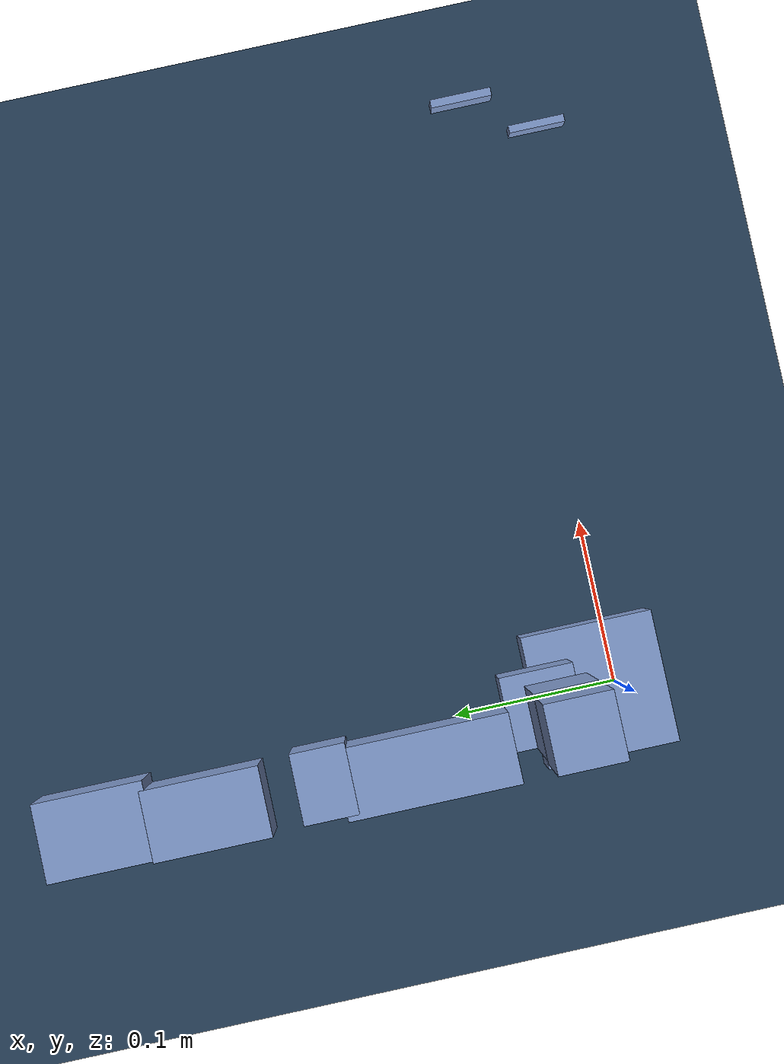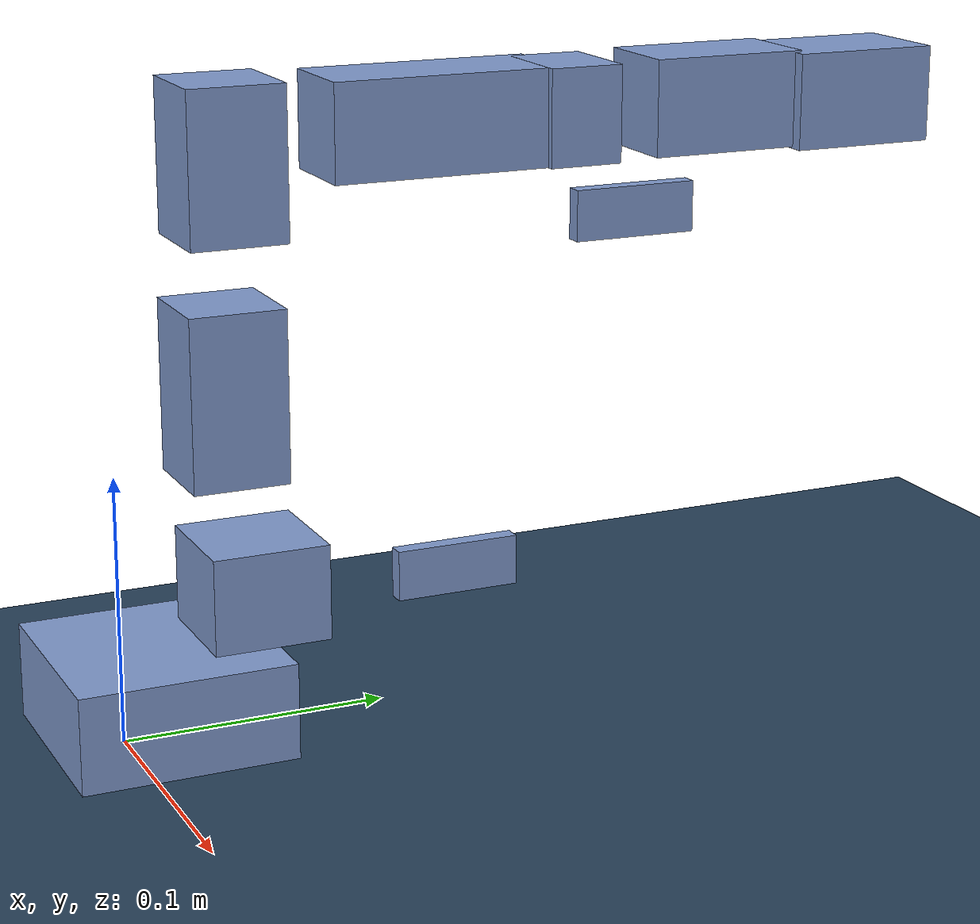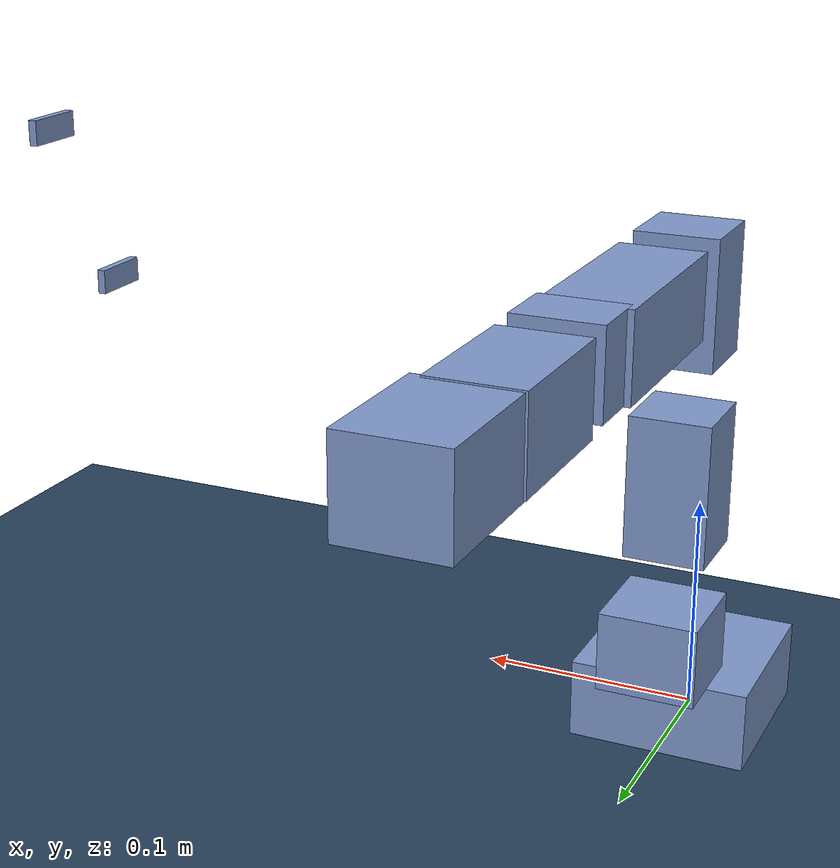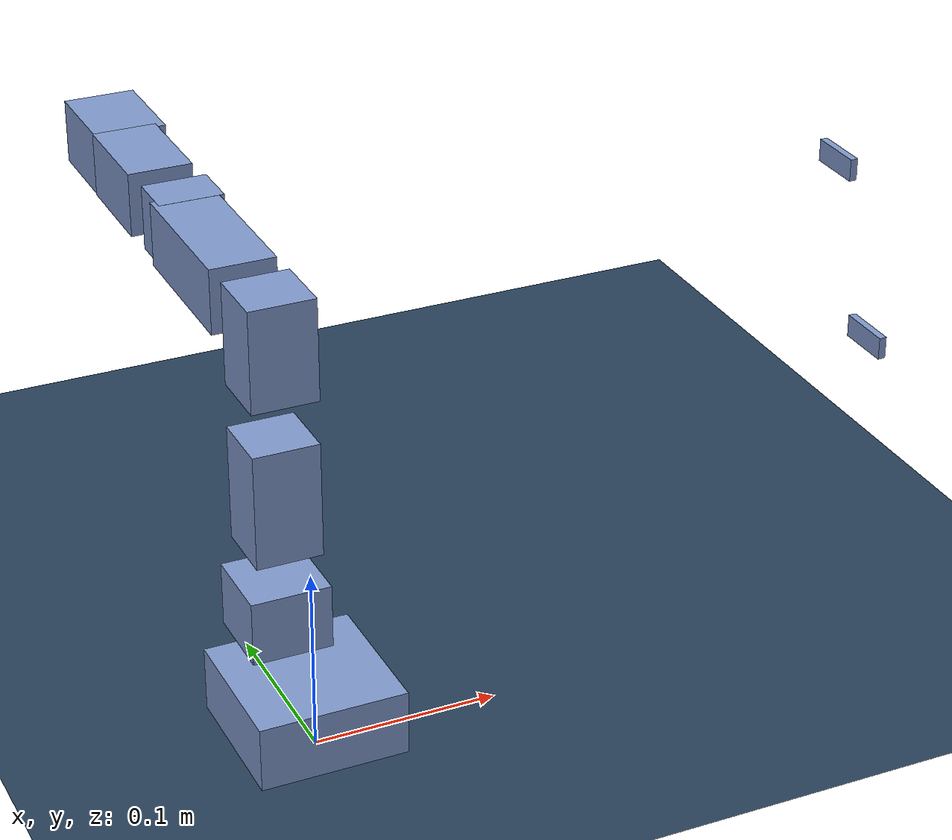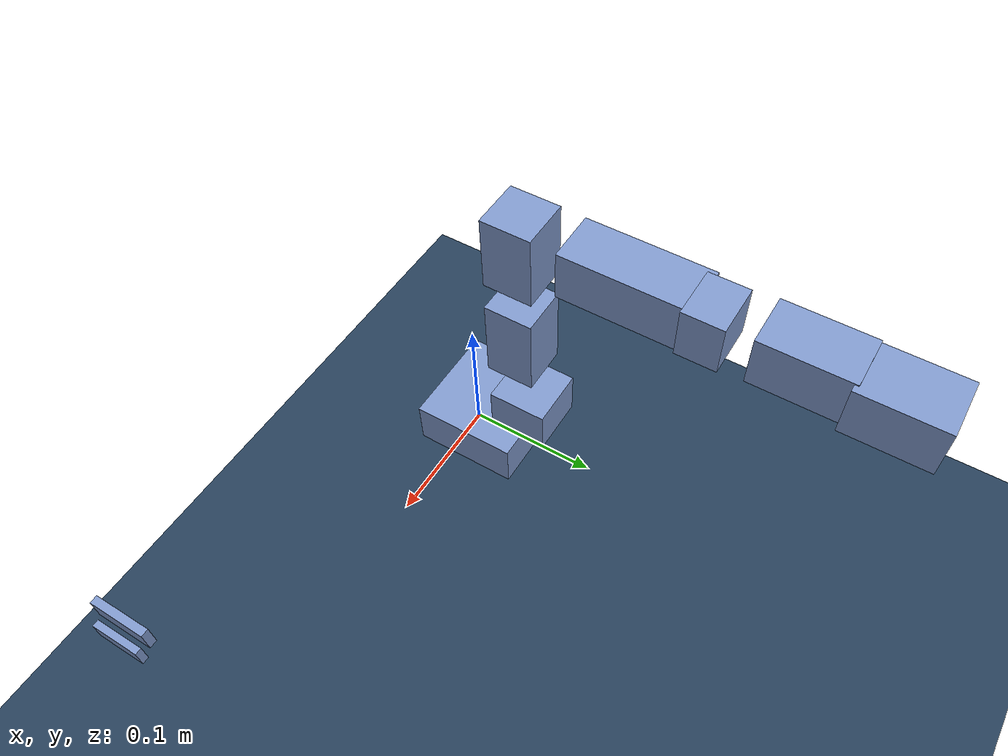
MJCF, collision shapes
<mujoco model="elrobot_follower scene">

  <include file="elrobot_follower.xml"/>

  <statistic center="0 0 0.1" extent="0.5"/>

  <visual>
    <headlight diffuse="0.6 0.6 0.6" ambient="0.3 0.3 0.3" specular="0 0 0"/>
    <rgba haze="0.15 0.25 0.35 1"/>
    <global azimuth="120" elevation="-20"/>
  </visual>

  <asset>
    <texture type="skybox" builtin="gradient" rgb1="0.3 0.5 0.7" rgb2="0 0 0" width="512" height="3072"/>
    <texture type="2d" name="groundplane" builtin="checker" mark="edge" rgb1="0.2 0.3 0.4" rgb2="0.1 0.2 0.3"
      markrgb="0.8 0.8 0.8" width="300" height="300"/>
    <material name="groundplane" texture="groundplane" texuniform="true" texrepeat="5 5" reflectance="0.2"/>
  </asset>

  <worldbody>
    <light name="floor_light" pos="0 0 1.5" dir="0 0 -1" directional="true"/>
    <geom name="floor" size="0 0 0.05" type="plane" material="groundplane"/>
  </worldbody>
</mujoco>

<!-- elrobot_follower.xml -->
<mujoco model="elrobot_follower">

  <compiler angle="radian" meshdir="../../assets" autolimits="true"/>

  <option cone="elliptic" impratio="10"/>

  <default>
    <default class="elrobot">
      <joint frictionloss="0.1" armature="0.1"/>
      <position kp="50" dampratio="1" forcerange="-2.94 2.94"/>
      <default class="visual">
        <geom type="mesh" contype="0" conaffinity="0" density="0" group="2" rgba="0.7 0.7 0.7 1"/>
        <default class="motor_visual">
          <geom rgba="0.1 0.1 0.1 1"/>
        </default>
      </default>
      <default class="collision">
        <geom group="3" rgba="0.5 0.6 0.8 0.3"/>
      </default>
    </default>
  </default>

  <asset>
    <mesh name="base_link" file="base_link.stl" scale="0.001 0.001 0.001"/>
    <mesh name="ST3215_1_v1_1" file="ST3215_1_v1_1.stl" scale="0.001 0.001 0.001"/>
    <mesh name="Joint_01_1" file="Joint_01_1.stl" scale="0.001 0.001 0.001"/>
    <mesh name="ST3215_2_v1_1" file="ST3215_2_v1_1.stl" scale="0.001 0.001 0.001"/>
    <mesh name="Joint_02_1" file="Joint_02_1.stl" scale="0.001 0.001 0.001"/>
    <mesh name="ST3215_3_v1_1" file="ST3215_3_v1_1.stl" scale="0.001 0.001 0.001"/>
    <mesh name="Joint_03_v1_1" file="Joint_03_v1_1.stl" scale="0.001 0.001 0.001"/>
    <mesh name="ST3215_4_v1_1" file="ST3215_4_v1_1.stl" scale="0.001 0.001 0.001"/>
    <mesh name="Joint_04_v1_1" file="Joint_04_v1_1.stl" scale="0.001 0.001 0.001"/>
    <mesh name="ST3215_5_v1_1" file="ST3215_5_v1_1.stl" scale="0.001 0.001 0.001"/>
    <mesh name="Joint_05_v1_1" file="Joint_05_v1_1.stl" scale="0.001 0.001 0.001"/>
    <mesh name="ST3215_6_v1_1" file="ST3215_6_v1_1.stl" scale="0.001 0.001 0.001"/>
    <mesh name="Joint_06_v1_1" file="Joint_06_v1_1.stl" scale="0.001 0.001 0.001"/>
    <mesh name="ST3215_7_v1_1" file="ST3215_7_v1_1.stl" scale="0.001 0.001 0.001"/>
    <mesh name="Gripper_Base_v1_1" file="Gripper_Base_v1_1.stl" scale="0.001 0.001 0.001"/>
    <mesh name="ST3215_8_v1_1" file="ST3215_8_v1_1.stl" scale="0.001 0.001 0.001"/>
    <mesh name="Gripper_Gear_v1_1" file="Gripper_Gear_v1_1.stl" scale="0.001 0.001 0.001"/>
    <mesh name="Gripper_Jaw_02_v1_1" file="Gripper_Jaw_02_v1_1.stl" scale="0.001 0.001 0.001"/>
    <mesh name="Gripper_Jaw_01_v1_1" file="Gripper_Jaw_01_v1_1.stl" scale="0.001 0.001 0.001"/>
  </asset>

  <worldbody>
    <body name="base_link" childclass="elrobot">
      <!-- base_link mass (0.03944) + ST3215_1 motor (0.055) merged via Rigid 1 -->
      <inertial pos="0 0.013084 0.019551" mass="0.09444"
                diaginertia="4.4e-05 6.3e-05 5.8e-05"/>
      <geom mesh="base_link" class="visual"/>
      <geom mesh="ST3215_1_v1_1" class="motor_visual" pos="0 0.007585 0.0315"/>
      <geom name="base_col" type="box" size="0.04 0.04 0.018" pos="0 0.013 0.018" class="collision"/>

      <body name="Joint_01_1" pos="0 0.042489 0.049005">
        <!-- Joint_01_1 (0.05706) + ST3215_2 (0.055) merged via Rigid 3 -->
        <inertial pos="0 0.010535 -0.002903" mass="0.11206"
                  diaginertia="2.7e-05 2.8e-05 1.4e-05"/>
        <joint name="rev_motor_01" pos="0 0 0" axis="0 -0.008727 0.999962"
               range="-1.5509 1.5509"/>
        <geom mesh="Joint_01_1" class="visual" pos="0 -0.042489 -0.049005"/>
        <geom mesh="ST3215_2_v1_1" class="motor_visual" pos="0 -0.042489 -0.049005"/>
        <geom name="j01_col" type="box" size="0.022 0.022 0.018" pos="0 0.008 0.005" class="collision"/>

        <body name="Joint_02_1" pos="-0.019668 -0.000366 0.041933">
          <!-- Joint_02_1 (0.05084) + ST3215_3 (0.055) merged via Rigid 7 -->
          <inertial pos="0.020187 -0.000361 0.040489" mass="0.10584"
                    diaginertia="3.1e-05 4.2e-05 2.1e-05"/>
          <joint name="rev_motor_02" pos="0 0 0" axis="-0.999962 -7.6e-05 0.008726"
                 range="-1.6122 1.6122"/>
          <geom mesh="Joint_02_1" class="visual" pos="0.019668 -0.042123 -0.090938"/>
          <geom mesh="ST3215_3_v1_1" class="motor_visual" pos="0.019668 -0.042123 -0.090938"/>
          <geom name="j02_col" type="box" size="0.018 0.018 0.032" pos="0.018 0 0.036" class="collision"/>

          <body name="Joint_03_v1_1" pos="-0.000122 -0.000796 0.091235">
            <!-- Joint_03 (0.03822) + ST3215_4 (0.055) merged via Rigid 9 -->
            <inertial pos="0.021383 0.002597 0.028573" mass="0.09322"
                      diaginertia="1.8e-05 2.2e-05 2.3e-05"/>
            <joint name="rev_motor_03" pos="0 0 0" axis="-0.999848 -0.000152 0.017452"
                   range="-1.7610 1.7610"/>
            <geom mesh="Joint_03_v1_1" class="visual" pos="0.01979 -0.041327 -0.182173"/>
            <geom mesh="ST3215_4_v1_1" class="motor_visual" pos="0.01979 -0.041327 -0.182173"/>
            <geom name="j03_col" type="box" size="0.018 0.018 0.028" pos="0.019 0.002 0.028" class="collision"/>

            <body name="Joint_04_v1_1" pos="0.000973 0.037162 0.037065">
              <!-- Joint_04 (0.05152) + ST3215_5 (0.055) merged via Rigid 11 -->
              <inertial pos="0.020415 0.046348 0.000473" mass="0.10652"
                        diaginertia="4.5e-05 2.8e-05 5.1e-05"/>
              <joint name="rev_motor_04" pos="0 0 0" axis="-0.99981 0.008574 0.017527"
                     range="-1.7533 1.7533"/>
              <geom mesh="Joint_04_v1_1" class="visual" pos="0.018817 -0.078489 -0.219238"/>
              <geom mesh="ST3215_5_v1_1" class="motor_visual" pos="0.018817 -0.078489 -0.219238"/>
              <geom name="j04_col" type="box" size="0.018 0.044 0.018" pos="0.018 0.044 0" class="collision"/>

              <body name="Joint_05_v1_1" pos="0.020714 0.082863 1.6e-05">
                <!-- Joint_05 (0.01756) + ST3215_6 (0.055) merged via Rigid 13 -->
                <inertial pos="-0.001451 0.014886 0.000239" mass="0.07256"
                          diaginertia="1.0e-05 9e-06 1.3e-05"/>
                <joint name="rev_motor_05" pos="0 0 0" axis="-0.008573 -0.999963 0.000151"
                       range="-3.1907 2.6998"/>
                <geom mesh="Joint_05_v1_1" class="visual" pos="-0.001897 -0.161352 -0.219254"/>
                <geom mesh="ST3215_6_v1_1" class="motor_visual" pos="-0.001897 -0.161352 -0.219254"/>
                <geom name="j05_col" type="box" size="0.018 0.014 0.018" pos="0 0.013 0" class="collision"/>

                <body name="Joint_06_v1_1" pos="-0.019923 0.042907 0.00035">
                  <!-- Joint_06 (0.03882) + ST3215_7 (0.055) merged via Rigid 15 -->
                  <inertial pos="0.020434 0.031977 0.000356" mass="0.09382"
                            diaginertia="2.4e-05 2.3e-05 2.6e-05"/>
                  <joint name="rev_motor_06" pos="0 0 0" axis="-0.999697 0.0173 0.017525"
                         range="-1.3775 1.7641"/>
                  <geom mesh="Joint_06_v1_1" class="visual" pos="0.018026 -0.204259 -0.219604"/>
                  <geom mesh="ST3215_7_v1_1" class="motor_visual" pos="0.018026 -0.204259 -0.219604"/>
                  <geom name="j06_col" type="box" size="0.018 0.030 0.018" pos="0.018 0.030 0" class="collision"/>

                  <body name="Gripper_Base_v1_1" pos="0.020951 0.055307 -0.000712">
                    <!-- Gripper_Base (0.06244) + ST3215_8 (0.055) merged via Rigid 17 -->
                    <inertial pos="0.000561 0.031920 -0.000595" mass="0.11744"
                              diaginertia="3.0e-05 3.6e-05 3.5e-05"/>
                    <joint name="rev_motor_07" pos="0 0 0" axis="-0.017144 -0.999812 0.009029"
                           range="-3.0710 2.7796"/>
                    <geom mesh="Gripper_Base_v1_1" class="visual" pos="-0.002925 -0.259566 -0.218892"/>
                    <geom mesh="ST3215_8_v1_1" class="motor_visual" pos="-0.002925 -0.259566 -0.218892"/>
                    <geom name="gbase_col" type="box" size="0.020 0.028 0.018" pos="0 0.030 0" class="collision"/>

                    <body name="Gripper_Gear_v1_1" pos="0.000776 0.045242 -0.000409">
                      <!-- Near-zero URDF inertia; diaginertia floor per comparison-table Risk note. -->
                      <inertial pos="6.4e-05 0.003756 -3.4e-05" mass="0.0039"
                                diaginertia="1e-06 1e-06 1e-06"/>
                      <joint name="rev_motor_08" pos="0 0 0" axis="0.017144 0.999812 -0.009029"
                             range="0 2.2028"/>
                      <geom mesh="Gripper_Gear_v1_1" class="motor_visual" pos="-0.003701 -0.304808 -0.218483"/>
                      <geom name="ggear_col" type="cylinder" size="0.008 0.004" pos="0 0.004 0"
                            euler="1.5708 0 0" class="collision"/>
                    </body>

                    <body name="Gripper_Jaw_02_v1_1" pos="0.311734 -0.199648 0.032849">
                      <!-- URDF COM origin is in world coordinates (clearly broken); reset to body origin.
                           Mass/inertia values from URDF. -->
                      <inertial pos="0 0 0" mass="0.0125"
                                diaginertia="5e-06 4e-06 3e-06"/>
                      <joint name="rev_motor_08_1" pos="0 0 0" axis="-0.999697 0.0173 0.017525"
                             type="slide" range="-0.0255 0"/>
                      <geom mesh="Gripper_Jaw_02_v1_1" class="visual" pos="-0.314659 -0.059918 -0.251741"/>
                      <geom name="jaw02_col" type="box" size="0.002 0.015 0.006" pos="0 -0.022 0" class="collision"/>
                    </body>

                    <body name="Gripper_Jaw_01_v1_1" pos="0.308573 -0.243367 -0.049391">
                      <!-- URDF COM origin is in world coordinates (clearly broken); reset to body origin.
                           Mass/inertia values from URDF. -->
                      <inertial pos="0 0 0" mass="0.0125"
                                diaginertia="5e-06 4e-06 3e-06"/>
                      <joint name="rev_motor_08_2" pos="0 0 0" axis="-0.999697 0.0173 0.017525"
                             type="slide" range="0 0.0255"/>
                      <geom mesh="Gripper_Jaw_01_v1_1" class="visual" pos="-0.311498 -0.016199 -0.171401"/>
                      <geom name="jaw01_col" type="box" size="0.002 0.015 0.006" pos="0 -0.022 0" class="collision"/>
                    </body>
                  </body>
                </body>
              </body>
            </body>
          </body>
        </body>
      </body>
    </body>
  </worldbody>

  <!-- Gripper mimic tendon coupling — preserved from MVP-1 MJCF, P0 invariant. -->
  <tendon>
    <fixed name="mimic_rev_motor_08_1">
      <joint joint="rev_motor_08_1" coef="1"/>
      <joint joint="rev_motor_08" coef="0.0115"/>
    </fixed>
    <fixed name="mimic_rev_motor_08_2">
      <joint joint="rev_motor_08_2" coef="1"/>
      <joint joint="rev_motor_08" coef="-0.0115"/>
    </fixed>
  </tendon>

  <equality>
    <tendon tendon1="mimic_rev_motor_08_1" solref="0.002 1" solimp="0.99 0.999 0.0001 0.5 2"/>
    <tendon tendon1="mimic_rev_motor_08_2" solref="0.002 1" solimp="0.99 0.999 0.0001 0.5 2"/>
  </equality>

  <contact>
    <exclude body1="base_link" body2="Joint_01_1"/>
    <exclude body1="Joint_01_1" body2="Joint_04_v1_1"/>
    <exclude body1="Joint_01_1" body2="Joint_05_v1_1"/>
    <exclude body1="Joint_01_1" body2="Joint_06_v1_1"/>
    <exclude body1="Joint_02_1" body2="Joint_04_v1_1"/>
    <exclude body1="Joint_02_1" body2="Joint_05_v1_1"/>
    <exclude body1="Joint_01_1" body2="Gripper_Base_v1_1"/>
    <!-- Round-3 sweep residuals (2026-04-12): M3/M4 +80% folds distal links
         (Joint_05, Joint_06, Gripper_Base) back to the base_link box. -->
    <exclude body1="base_link" body2="Joint_05_v1_1"/>
    <exclude body1="base_link" body2="Joint_06_v1_1"/>
    <exclude body1="base_link" body2="Gripper_Base_v1_1"/>
    <!-- Round-4 sweep residual (2026-04-12): M4 +80% folds Joint_06 near
         Joint_02's box as the arm folds back. -->
    <exclude body1="Joint_02_1" body2="Joint_06_v1_1"/>
  </contact>

  <actuator>
    <position class="elrobot" name="act_motor_01" joint="rev_motor_01"
              ctrlrange="-1.5509 1.5509"/>
    <position class="elrobot" name="act_motor_02" joint="rev_motor_02"
              ctrlrange="-1.6122 1.6122"/>
    <position class="elrobot" name="act_motor_03" joint="rev_motor_03"
              ctrlrange="-1.7610 1.7610"/>
    <position class="elrobot" name="act_motor_04" joint="rev_motor_04"
              ctrlrange="-1.7533 1.7533"/>
    <position class="elrobot" name="act_motor_05" joint="rev_motor_05"
              ctrlrange="-3.1907 2.6998"/>
    <position class="elrobot" name="act_motor_06" joint="rev_motor_06"
              ctrlrange="-1.3775 1.7641"/>
    <position class="elrobot" name="act_motor_07" joint="rev_motor_07"
              ctrlrange="-3.0710 2.7796"/>
    <position class="elrobot" name="act_motor_08" joint="rev_motor_08"
              ctrlrange="0 2.2028"/>
  </actuator>
</mujoco>
